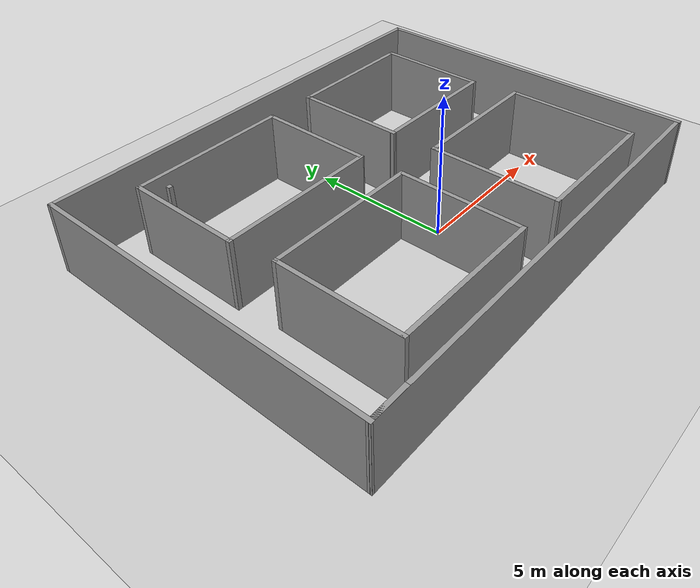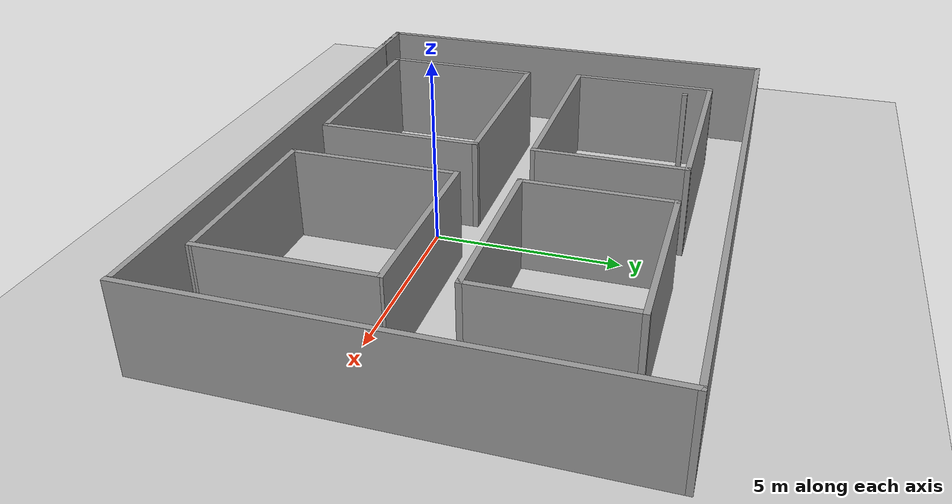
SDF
<sdf version="1.7">
 <world name="default">
  <light name="sun" type="directional">
   <pose>0 0 10 0 -0 0</pose>
   <diffuse>0.8 0.8 0.8 1</diffuse>
   <specular>0.2 0.2 0.2 1</specular>
   <attenuation>
    <range>1000</range>
    <constant>0.9</constant>
    <linear>0.01</linear>
    <quadratic>0.001</quadratic>
   </attenuation>
   <direction>-0.5 0.1 -0.9</direction>
   <spot><inner_angle>0</inner_angle><outer_angle>0</outer_angle><falloff>0</falloff></spot>
  </light>
  <model name="ground_plane">
   <static>1</static>
   <link name="link">
    <collision name="collision">
     <geometry><plane><normal>0 0 1</normal><size>100 100</size></plane></geometry>
     <surface>
      <contact><collide_bitmask>65535</collide_bitmask></contact>
      <friction><ode><mu>100</mu><mu2>50</mu2></ode></friction>
     </surface>
    </collision>
    <visual name="visual">
     <cast_shadows>0</cast_shadows>
     <geometry><plane><normal>0 0 1</normal><size>100 100</size></plane></geometry>
     <material>
      <script><uri>file://media/materials/scripts/gazebo.material</uri><name>Gazebo/Grey</name></script>
     </material>
    </visual>
   </link>
  </model>
  <gravity>0 0 -9.8</gravity>
  <magnetic_field>6e-06 2.3e-05 -4.2e-05</magnetic_field>
  <atmosphere type="adiabatic"/>
  <physics type="ode">
   <max_step_size>0.001</max_step_size>
   <real_time_factor>1</real_time_factor>
   <real_time_update_rate>1000</real_time_update_rate>
  </physics>
  <scene><ambient>0.4 0.4 0.4 1</ambient><background>0.7 0.7 0.7 1</background><shadows>1</shadows></scene>
  <spherical_coordinates>
   <surface_model>EARTH_WGS84</surface_model>
   <latitude_deg>0</latitude_deg>
   <longitude_deg>0</longitude_deg>
   <elevation>0</elevation>
   <heading_deg>0</heading_deg>
  </spherical_coordinates>
  <model name="crossing">
   <pose>-0.604888 1.56726 0 0 -0 0</pose>
   <link name="Wall_0">
    <collision name="Wall_0_Collision">
     <geometry><box><size>16.1388 0.15 2.5</size></box></geometry>
     <pose>0 0 1.25 0 -0 0</pose>
    </collision>
    <visual name="Wall_0_Visual">
     <pose>0 0 1.25 0 -0 0</pose>
     <geometry><box><size>16.1388 0.15 2.5</size></box></geometry>
     <material>
      <script><uri>file://media/materials/scripts/gazebo.material</uri><name>Gazebo/Grey</name></script>
      <ambient>1 1 1 1</ambient>
     </material>
     <meta><layer>0</layer></meta>
    </visual>
    <pose>0.011836 6.0615 0 0 -0 0</pose>
   </link>
   <link name="Wall_1">
    <collision name="Wall_1_Collision">
     <geometry><box><size>12.2734 0.15 2.5</size></box></geometry>
     <pose>0 0 1.25 0 -0 0</pose>
    </collision>
    <visual name="Wall_1_Visual">
     <pose>0 0 1.25 0 -0 0</pose>
     <geometry><box><size>12.2734 0.15 2.5</size></box></geometry>
     <material>
      <script><uri>file://media/materials/scripts/gazebo.material</uri><name>Gazebo/Grey</name></script>
      <ambient>1 1 1 1</ambient>
     </material>
     <meta><layer>0</layer></meta>
    </visual>
    <pose>8.00584 -0 0 0 -0 -1.5708</pose>
   </link>
   <link name="Wall_28">
    <collision name="Wall_28_Collision">
     <geometry><box><size>0.15 0.15 2.5</size></box></geometry>
     <pose>0 0 1.25 0 -0 0</pose>
    </collision>
    <visual name="Wall_28_Visual">
     <pose>0 0 1.25 0 -0 0</pose>
     <geometry><box><size>0.15 0.15 2.5</size></box></geometry>
     <material>
      <script><uri>file://media/materials/scripts/gazebo.material</uri><name>Gazebo/Grey</name></script>
      <ambient>1 1 1 1</ambient>
     </material>
     <meta><layer>0</layer></meta>
    </visual>
    <pose>-5.25214 4.135 0 0 -0 0</pose>
   </link>
   <link name="Wall_35">
    <collision name="Wall_35_Collision">
     <geometry><box><size>5.482 0.15 2.5</size></box></geometry>
     <pose>0 0 1.25 0 -0 0</pose>
    </collision>
    <visual name="Wall_35_Visual">
     <pose>0 0 1.25 0 -0 0</pose>
     <geometry><box><size>5.482 0.15 2.5</size></box></geometry>
     <material>
      <script><uri>file://media/materials/scripts/gazebo.material</uri><name>Gazebo/Grey</name></script>
      <ambient>1 1 1 1</ambient>
     </material>
     <meta><layer>0</layer></meta>
    </visual>
    <pose>-2.96816 -5.0805 0 0 -0 0</pose>
   </link>
   <link name="Wall_36">
    <collision name="Wall_36_Collision">
     <geometry><box><size>4.475 0.15 2.5</size></box></geometry>
     <pose>0 0 1.25 0 -0 0</pose>
    </collision>
    <visual name="Wall_36_Visual">
     <pose>0 0 1.25 0 -0 0</pose>
     <geometry><box><size>4.475 0.15 2.5</size></box></geometry>
     <material>
      <script><uri>file://media/materials/scripts/gazebo.material</uri><name>Gazebo/Grey</name></script>
      <ambient>1 1 1 1</ambient>
     </material>
     <meta><layer>0</layer></meta>
    </visual>
    <pose>-0.302164 -2.918 0 0 -0 1.5708</pose>
   </link>
   <link name="Wall_37">
    <collision name="Wall_37_Collision">
     <geometry><box><size>5.482 0.15 2.5</size></box></geometry>
     <pose>0 0 1.25 0 -0 0</pose>
    </collision>
    <visual name="Wall_37_Visual">
     <pose>0 0 1.25 0 -0 0</pose>
     <geometry><box><size>5.482 0.15 2.5</size></box></geometry>
     <material>
      <script><uri>file://media/materials/scripts/gazebo.material</uri><name>Gazebo/Grey</name></script>
      <ambient>1 1 1 1</ambient>
     </material>
     <meta><layer>0</layer></meta>
    </visual>
    <pose>-2.96816 -0.7555 0 0 -0 3.14159</pose>
   </link>
   <link name="Wall_38">
    <collision name="Wall_38_Collision">
     <geometry><box><size>4.475 0.15 2.5</size></box></geometry>
     <pose>0 0 1.25 0 -0 0</pose>
    </collision>
    <visual name="Wall_38_Visual">
     <pose>0 0 1.25 0 -0 0</pose>
     <geometry><box><size>4.475 0.15 2.5</size></box></geometry>
     <material>
      <script><uri>file://media/materials/scripts/gazebo.material</uri><name>Gazebo/Grey</name></script>
      <ambient>1 1 1 1</ambient>
     </material>
     <meta><layer>0</layer></meta>
    </visual>
    <pose>-5.63416 -2.918 0 0 -0 -1.5708</pose>
   </link>
   <link name="Wall_40">
    <collision name="Wall_40_Collision">
     <geometry><box><size>5 0.15 2.5</size></box></geometry>
     <pose>0 0 1.25 0 -0 0</pose>
    </collision>
    <visual name="Wall_40_Visual">
     <pose>0 0 1.25 0 -0 0</pose>
     <geometry><box><size>5 0.15 2.5</size></box></geometry>
     <material>
      <script><uri>file://media/materials/scripts/gazebo.material</uri><name>Gazebo/Grey</name></script>
      <ambient>1 1 1 1</ambient>
     </material>
     <meta><layer>0</layer></meta>
    </visual>
    <pose>3.86984 -5.1765 0 0 -0 3.14159</pose>
   </link>
   <link name="Wall_41">
    <collision name="Wall_41_Collision">
     <geometry><box><size>4.634 0.15 2.5</size></box></geometry>
     <pose>0 0 1.25 0 -0 0</pose>
    </collision>
    <visual name="Wall_41_Visual">
     <pose>0 0 1.25 0 -0 0</pose>
     <geometry><box><size>4.634 0.15 2.5</size></box></geometry>
     <material>
      <script><uri>file://media/materials/scripts/gazebo.material</uri><name>Gazebo/Grey</name></script>
      <ambient>1 1 1 1</ambient>
     </material>
     <meta><layer>0</layer></meta>
    </visual>
    <pose>1.44484 -2.9345 0 0 -0 1.5708</pose>
   </link>
   <link name="Wall_42">
    <collision name="Wall_42_Collision">
     <geometry><box><size>4.995 0.15 2.5</size></box></geometry>
     <pose>0 0 1.25 0 -0 0</pose>
    </collision>
    <visual name="Wall_42_Visual">
     <pose>0 0 1.25 0 -0 0</pose>
     <geometry><box><size>4.995 0.15 2.5</size></box></geometry>
     <material>
      <script><uri>file://media/materials/scripts/gazebo.material</uri><name>Gazebo/Grey</name></script>
      <ambient>1 1 1 1</ambient>
     </material>
     <meta><layer>0</layer></meta>
    </visual>
    <pose>3.86734 -0.6925 0 0 -0 0</pose>
   </link>
   <link name="Wall_43">
    <collision name="Wall_43_Collision">
     <geometry><box><size>4.6337 0.15 2.5</size></box></geometry>
     <pose>0 0 1.25 0 -0 0</pose>
    </collision>
    <visual name="Wall_43_Visual">
     <pose>0 0 1.25 0 -0 0</pose>
     <geometry><box><size>4.6337 0.15 2.5</size></box></geometry>
     <material>
      <script><uri>file://media/materials/scripts/gazebo.material</uri><name>Gazebo/Grey</name></script>
      <ambient>1 1 1 1</ambient>
     </material>
     <meta><layer>0</layer></meta>
    </visual>
    <pose>6.29234 -2.9345 0 0 -0 -1.56968</pose>
   </link>
   <link name="Wall_45">
    <collision name="Wall_45_Collision">
     <geometry><box><size>4.79952 0.15 2.5</size></box></geometry>
     <pose>0 0 1.25 0 -0 0</pose>
    </collision>
    <visual name="Wall_45_Visual">
     <pose>0 0 1.25 0 -0 0</pose>
     <geometry><box><size>4.79952 0.15 2.5</size></box></geometry>
     <material>
      <script><uri>file://media/materials/scripts/gazebo.material</uri><name>Gazebo/Grey</name></script>
      <ambient>1 1 1 1</ambient>
     </material>
     <meta><layer>0</layer></meta>
    </visual>
    <pose>3.70434 4.7805 0 0 -0 3.14159</pose>
   </link>
   <link name="Wall_46">
    <collision name="Wall_46_Collision">
     <geometry><box><size>4 0.15 2.5</size></box></geometry>
     <pose>0 0 1.25 0 -0 0</pose>
    </collision>
    <visual name="Wall_46_Visual">
     <pose>0 0 1.25 0 -0 0</pose>
     <geometry><box><size>4 0.15 2.5</size></box></geometry>
     <material>
      <script><uri>file://media/materials/scripts/gazebo.material</uri><name>Gazebo/Grey</name></script>
      <ambient>1 1 1 1</ambient>
     </material>
     <meta><layer>0</layer></meta>
    </visual>
    <pose>1.37984 2.8555 0 0 -0 -1.5708</pose>
   </link>
   <link name="Wall_47">
    <collision name="Wall_47_Collision">
     <geometry><box><size>4.79933 0.15 2.5</size></box></geometry>
     <pose>0 0 1.25 0 -0 0</pose>
    </collision>
    <visual name="Wall_47_Visual">
     <pose>0 0 1.25 0 -0 0</pose>
     <geometry><box><size>4.79933 0.15 2.5</size></box></geometry>
     <material>
      <script><uri>file://media/materials/scripts/gazebo.material</uri><name>Gazebo/Grey</name></script>
      <ambient>1 1 1 1</ambient>
     </material>
     <meta><layer>0</layer></meta>
    </visual>
    <pose>3.7045 0.930618 0 0 -0 5.1e-05</pose>
   </link>
   <link name="Wall_48">
    <collision name="Wall_48_Collision">
     <geometry><box><size>4 0.15 2.5</size></box></geometry>
     <pose>0 0 1.25 0 -0 0</pose>
    </collision>
    <visual name="Wall_48_Visual">
     <pose>0 0 1.25 0 -0 0</pose>
     <geometry><box><size>4 0.15 2.5</size></box></geometry>
     <material>
      <script><uri>file://media/materials/scripts/gazebo.material</uri><name>Gazebo/Grey</name></script>
      <ambient>1 1 1 1</ambient>
     </material>
     <meta><layer>0</layer></meta>
    </visual>
    <pose>6.029 2.85562 0 0 -0 1.57088</pose>
   </link>
   <link name="Wall_51">
    <collision name="Wall_51_Collision">
     <geometry><box><size>5.60004 0.15 2.5</size></box></geometry>
     <pose>0 0 1.25 0 -0 0</pose>
    </collision>
    <visual name="Wall_51_Visual">
     <pose>0 0 1.25 0 -0 0</pose>
     <geometry><box><size>5.60004 0.15 2.5</size></box></geometry>
     <material>
      <script><uri>file://media/materials/scripts/gazebo.material</uri><name>Gazebo/Grey</name></script>
      <ambient>1 1 1 1</ambient>
     </material>
     <meta><layer>0</layer></meta>
    </visual>
    <pose>-3.12316 4.8095 0 0 -0 0</pose>
   </link>
   <link name="Wall_52">
    <collision name="Wall_52_Collision">
     <geometry><box><size>4.15 0.15 2.5</size></box></geometry>
     <pose>0 0 1.25 0 -0 0</pose>
    </collision>
    <visual name="Wall_52_Visual">
     <pose>0 0 1.25 0 -0 0</pose>
     <geometry><box><size>4.15 0.15 2.5</size></box></geometry>
     <material>
      <script><uri>file://media/materials/scripts/gazebo.material</uri><name>Gazebo/Grey</name></script>
      <ambient>1 1 1 1</ambient>
     </material>
     <meta><layer>0</layer></meta>
    </visual>
    <pose>-0.398664 2.8095 0 0 -0 -1.57105</pose>
   </link>
   <link name="Wall_53">
    <collision name="Wall_53_Collision">
     <geometry><box><size>5.599 0.15 2.5</size></box></geometry>
     <pose>0 0 1.25 0 -0 0</pose>
    </collision>
    <visual name="Wall_53_Visual">
     <pose>0 0 1.25 0 -0 0</pose>
     <geometry><box><size>5.599 0.15 2.5</size></box></geometry>
     <material>
      <script><uri>file://media/materials/scripts/gazebo.material</uri><name>Gazebo/Grey</name></script>
      <ambient>1 1 1 1</ambient>
     </material>
     <meta><layer>0</layer></meta>
    </visual>
    <pose>-3.12366 0.8095 0 0 -0 3.14159</pose>
   </link>
   <link name="Wall_56">
    <collision name="Wall_56_Collision">
     <geometry><box><size>4.15 0.15 2.5</size></box></geometry>
     <pose>0 0 1.25 0 -0 0</pose>
    </collision>
    <visual name="Wall_56_Visual">
     <pose>0 0 1.25 0 -0 0</pose>
     <geometry><box><size>4.15 0.15 2.5</size></box></geometry>
     <material>
      <script><uri>file://media/materials/scripts/gazebo.material</uri><name>Gazebo/Grey</name></script>
      <ambient>1 1 1 1</ambient>
     </material>
     <meta><layer>0</layer></meta>
    </visual>
    <pose>-5.84816 2.8095 0 0 -0 1.5708</pose>
   </link>
   <link name="Wall_6">
    <collision name="Wall_6_Collision">
     <geometry><box><size>12.25 0.15 2.5</size></box></geometry>
     <pose>0 0 1.25 0 -0 0</pose>
    </collision>
    <visual name="Wall_6_Visual">
     <pose>0 0 1.25 0 -0 0</pose>
     <geometry><box><size>12.25 0.15 2.5</size></box></geometry>
     <material>
      <script><uri>file://media/materials/scripts/gazebo.material</uri><name>Gazebo/Grey</name></script>
      <ambient>1 1 1 1</ambient>
     </material>
     <meta><layer>0</layer></meta>
    </visual>
    <pose>-7.99397 0.011353 0 0 -0 1.56885</pose>
   </link>
   <link name="Wall_8">
    <collision name="Wall_8_Collision">
     <geometry><box><size>1.36005 0.15 2.5</size></box></geometry>
     <pose>0 0 1.25 0 -0 0</pose>
    </collision>
    <visual name="Wall_8_Visual">
     <pose>0 0 1.25 0 -0 0</pose>
     <geometry><box><size>1.36005 0.15 2.5</size></box></geometry>
     <material>
      <script><uri>file://media/materials/scripts/gazebo.material</uri><name>Gazebo/Grey</name></script>
      <ambient>1 1 1 1</ambient>
     </material>
     <meta><layer>0</layer></meta>
    </visual>
    <pose>-7.40076 -6.03505 0 0 -0 -3.1354</pose>
   </link>
   <link name="Wall_9">
    <collision name="Wall_9_Collision">
     <geometry><box><size>16 0.15 2.5</size></box></geometry>
     <pose>0 0 1.25 0 -0 0</pose>
    </collision>
    <visual name="Wall_9_Visual">
     <pose>0 0 1.25 0 -0 0</pose>
     <geometry><box><size>16 0.15 2.5</size></box></geometry>
     <material>
      <script><uri>file://media/materials/scripts/gazebo.material</uri><name>Gazebo/Grey</name></script>
      <ambient>1 1 1 1</ambient>
     </material>
     <meta><layer>0</layer></meta>
    </visual>
    <pose>-0.080772 -6.03879 0 0 -0 0</pose>
   </link>
   <static>1</static>
  </model>
  <model name="mycar">
   <link name="base_footprint">
    <inertial>
     <pose>0.00127 0 0.093611 0 -0 0</pose>
     <mass>0.63</mass>
     <inertia>
      <ixx>0.00557395</ixx>
      <ixy>0</ixy>
      <ixz>-1.11111e-05</ixz>
      <iyy>0.00563694</iyy>
      <iyz>0</iyz>
      <izz>0.00261003</izz>
     </inertia>
    </inertial>
    <collision name="base_footprint_fixed_joint_lump__base_link_collision">
     <pose>0 0 0.055 0 -0 0</pose>
     <geometry><cylinder><length>0.08</length><radius>0.1</radius></cylinder></geometry>
    </collision>
    <collision name="base_footprint_fixed_joint_lump__camera_collision_1">
     <pose>0.08 0 0.1075 0 -0 0</pose>
     <geometry><box><size>0.01 0.025 0.025</size></box></geometry>
    </collision>
    <collision name="base_footprint_fixed_joint_lump__support_collision_2">
     <pose>0 0 0.17 0 -0 0</pose>
     <geometry><cylinder><length>0.15</length><radius>0.01</radius></cylinder></geometry>
    </collision>
    <collision name="base_footprint_fixed_joint_lump__laser_collision_3">
     <pose>0 0 0.27 0 -0 0</pose>
     <geometry><cylinder><length>0.05</length><radius>0.03</radius></cylinder></geometry>
    </collision>
    <visual name="base_footprint_visual"><geometry><sphere><radius>0.001</radius></sphere></geometry></visual>
    <visual name="base_footprint_fixed_joint_lump__base_link_visual_1">
     <pose>0 0 0.055 0 -0 0</pose>
     <geometry><cylinder><length>0.08</length><radius>0.1</radius></cylinder></geometry>
     <material>
      <script><name>Gazebo/Yellow</name><uri>file://media/materials/scripts/gazebo.material</uri></script>
     </material>
    </visual>
    <visual name="base_footprint_fixed_joint_lump__camera_visual_2">
     <pose>0.08 0 0.1075 0 -0 0</pose>
     <geometry><box><size>0.01 0.025 0.025</size></box></geometry>
     <material>
      <script><name>Gazebo/Blue</name><uri>file://media/materials/scripts/gazebo.material</uri></script>
     </material>
    </visual>
    <visual name="base_footprint_fixed_joint_lump__support_visual_3">
     <pose>0 0 0.17 0 -0 0</pose>
     <geometry><cylinder><length>0.15</length><radius>0.01</radius></cylinder></geometry>
     <material>
      <script><name>Gazebo/White</name><uri>file://media/materials/scripts/gazebo.material</uri></script>
     </material>
    </visual>
    <visual name="base_footprint_fixed_joint_lump__laser_visual_4">
     <pose>0 0 0.27 0 -0 0</pose>
     <geometry><cylinder><length>0.05</length><radius>0.03</radius></cylinder></geometry>
     <material>
      <script><name>Gazebo/Black</name><uri>file://media/materials/scripts/gazebo.material</uri></script>
     </material>
    </visual>
    <sensor name="rplidar" type="ray">
     <visualize>1</visualize>
     <update_rate>5.5</update_rate>
     <ray>
      <scan>
       <horizontal>
        <samples>360</samples>
        <resolution>1</resolution>
        <min_angle>-3</min_angle>
        <max_angle>3</max_angle>
       </horizontal>
       <vertical><samples>1</samples><min_angle>0</min_angle><max_angle>0</max_angle></vertical>
      </scan>
      <range><min>0.1</min><max>30</max><resolution>0.01</resolution></range>
      <noise><type>gaussian</type><mean>0</mean><stddev>0.01</stddev></noise>
     </ray>
     <plugin name="gazebo_rplidar" filename="libgazebo_ros_laser.so">
      <topicName>/scan</topicName>
      <frameName>laser</frameName>
      <robotNamespace>/</robotNamespace>
     </plugin>
     <pose>0 0 0.27 0 -0 0</pose>
    </sensor>
   </link>
   <joint name="back_wheel2base_link" type="revolute">
    <pose relative_to="base_footprint">-0.0925 0 0.0075 0 -0 0</pose>
    <parent>base_footprint</parent>
    <child>back_wheel</child>
    <axis>
     <xyz>1 1 1</xyz>
     <limit><lower>-1e+16</lower><upper>1e+16</upper></limit>
     <dynamics><spring_reference>0</spring_reference><spring_stiffness>0</spring_stiffness></dynamics>
    </axis>
   </joint>
   <link name="back_wheel">
    <pose relative_to="back_wheel2base_link">0 0 0 0 -0 0</pose>
    <inertial>
     <mass>0.03</mass>
     <inertia>
      <ixx>6.75e-07</ixx>
      <ixy>0</ixy>
      <ixz>0</ixz>
      <iyy>6.75e-07</iyy>
      <iyz>0</iyz>
      <izz>6.75e-07</izz>
     </inertia>
    </inertial>
    <collision name="back_wheel_collision">
     <geometry><sphere><radius>0.0075</radius></sphere></geometry>
    </collision>
    <visual name="back_wheel_visual">
     <geometry><sphere><radius>0.0075</radius></sphere></geometry>
     <material>
      <script><name>Gazebo/Red</name><uri>file://media/materials/scripts/gazebo.material</uri></script>
     </material>
    </visual>
   </link>
   <joint name="front_wheel2base_link" type="revolute">
    <pose relative_to="base_footprint">0.0925 0 0.0075 0 -0 0</pose>
    <parent>base_footprint</parent>
    <child>front_wheel</child>
    <axis>
     <xyz>1 1 1</xyz>
     <limit><lower>-1e+16</lower><upper>1e+16</upper></limit>
     <dynamics><spring_reference>0</spring_reference><spring_stiffness>0</spring_stiffness></dynamics>
    </axis>
   </joint>
   <link name="front_wheel">
    <pose relative_to="front_wheel2base_link">0 0 0 0 -0 0</pose>
    <inertial>
     <mass>0.03</mass>
     <inertia>
      <ixx>6.75e-07</ixx>
      <ixy>0</ixy>
      <ixz>0</ixz>
      <iyy>6.75e-07</iyy>
      <iyz>0</iyz>
      <izz>6.75e-07</izz>
     </inertia>
    </inertial>
    <collision name="front_wheel_collision">
     <geometry><sphere><radius>0.0075</radius></sphere></geometry>
    </collision>
    <visual name="front_wheel_visual">
     <geometry><sphere><radius>0.0075</radius></sphere></geometry>
     <material>
      <script><name>Gazebo/Red</name><uri>file://media/materials/scripts/gazebo.material</uri></script>
     </material>
    </visual>
   </link>
   <joint name="left_wheel2base_link" type="revolute">
    <pose relative_to="base_footprint">0 0.1 0.0325 0 -0 0</pose>
    <parent>base_footprint</parent>
    <child>left_wheel</child>
    <axis>
     <xyz>0 1 0</xyz>
     <limit><lower>-1e+16</lower><upper>1e+16</upper></limit>
     <dynamics><spring_reference>0</spring_reference><spring_stiffness>0</spring_stiffness></dynamics>
    </axis>
   </joint>
   <link name="left_wheel">
    <pose relative_to="left_wheel2base_link">0 0 0 0 -0 0</pose>
    <inertial>
     <mass>0.05</mass>
     <inertia>
      <ixx>1.41406e-05</ixx>
      <ixy>0</ixy>
      <ixz>0</ixz>
      <iyy>1.41406e-05</iyy>
      <iyz>0</iyz>
      <izz>2.64063e-05</izz>
     </inertia>
    </inertial>
    <collision name="left_wheel_collision">
     <pose>0 0 0 1.5708 -0 0</pose>
     <geometry><cylinder><length>0.015</length><radius>0.0325</radius></cylinder></geometry>
    </collision>
    <visual name="left_wheel_visual">
     <pose>0 0 0 1.5708 -0 0</pose>
     <geometry><cylinder><length>0.015</length><radius>0.0325</radius></cylinder></geometry>
     <material>
      <script><name>Gazebo/Red</name><uri>file://media/materials/scripts/gazebo.material</uri></script>
     </material>
    </visual>
   </link>
   <joint name="right_wheel2base_link" type="revolute">
    <pose relative_to="base_footprint">0 -0.1 0.0325 0 -0 0</pose>
    <parent>base_footprint</parent>
    <child>right_wheel</child>
    <axis>
     <xyz>0 1 0</xyz>
     <limit><lower>-1e+16</lower><upper>1e+16</upper></limit>
     <dynamics><spring_reference>0</spring_reference><spring_stiffness>0</spring_stiffness></dynamics>
    </axis>
   </joint>
   <link name="right_wheel">
    <pose relative_to="right_wheel2base_link">0 0 0 0 -0 0</pose>
    <inertial>
     <mass>0.05</mass>
     <inertia>
      <ixx>1.41406e-05</ixx>
      <ixy>0</ixy>
      <ixz>0</ixz>
      <iyy>1.41406e-05</iyy>
      <iyz>0</iyz>
      <izz>2.64063e-05</izz>
     </inertia>
    </inertial>
    <collision name="right_wheel_collision">
     <pose>0 0 0 1.5708 -0 0</pose>
     <geometry><cylinder><length>0.015</length><radius>0.0325</radius></cylinder></geometry>
    </collision>
    <visual name="right_wheel_visual">
     <pose>0 0 0 1.5708 -0 0</pose>
     <geometry><cylinder><length>0.015</length><radius>0.0325</radius></cylinder></geometry>
     <material>
      <script><name>Gazebo/Red</name><uri>file://media/materials/scripts/gazebo.material</uri></script>
     </material>
    </visual>
   </link>
   <plugin name="differential_drive_controller" filename="libgazebo_ros_diff_drive.so">
    <rosDebugLevel>Debug</rosDebugLevel>
    <publishWheelTF>1</publishWheelTF>
    <robotNamespace>/</robotNamespace>
    <publishTf>1</publishTf>
    <publishWheelJointState>1</publishWheelJointState>
    <alwaysOn>1</alwaysOn>
    <updateRate>100.0</updateRate>
    <legacyMode>1</legacyMode>
    <leftJoint>left_wheel2base_link</leftJoint>
    <rightJoint>right_wheel2base_link</rightJoint>
    <wheelSeparation>0.2</wheelSeparation>
    <wheelDiameter>0.065</wheelDiameter>
    <broadcastTF>1</broadcastTF>
    <wheelTorque>30</wheelTorque>
    <wheelAcceleration>1.8</wheelAcceleration>
    <commandTopic>cmd_vel</commandTopic>
    <odometryFrame>odom</odometryFrame>
    <odometryTopic>odom</odometryTopic>
    <robotBaseFrame>base_footprint</robotBaseFrame>
   </plugin>
   <frame name="camera2base_link" attached_to="base_link"><pose>0.08 0 0.0525 0 -0 0</pose></frame>
   <frame name="camera" attached_to="camera2base_link"/>
   <frame name="laser2support" attached_to="support"><pose>0 0 0.1 0 -0 0</pose></frame>
   <frame name="laser" attached_to="laser2support"/>
   <frame name="support2base_link" attached_to="base_link"><pose>0 0 0.115 0 -0 0</pose></frame>
   <frame name="support" attached_to="support2base_link"/>
   <frame name="base_link2base_footprint" attached_to="base_footprint"><pose>0 0 0.055 0 -0 0</pose></frame>
   <frame name="base_link" attached_to="base_link2base_footprint"/>
   <pose>0.000356 -0.000328 0 0 0 -0.00371</pose>
  </model>
 </world>
</sdf>
